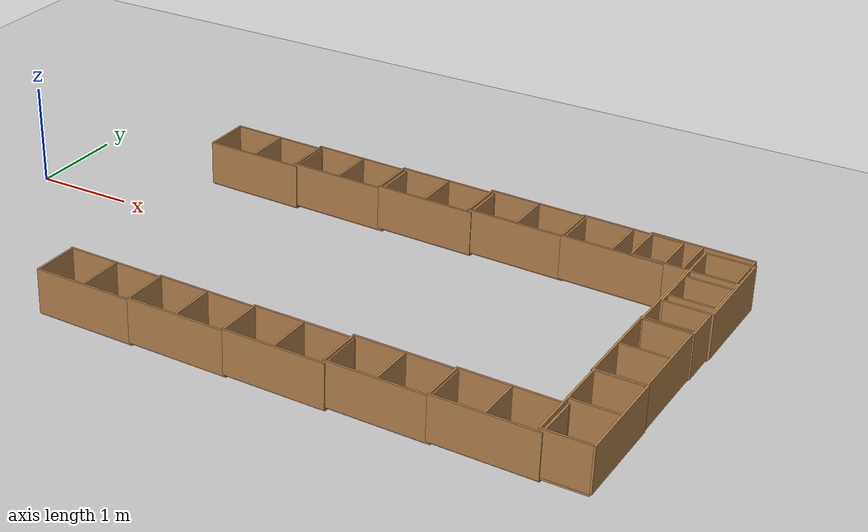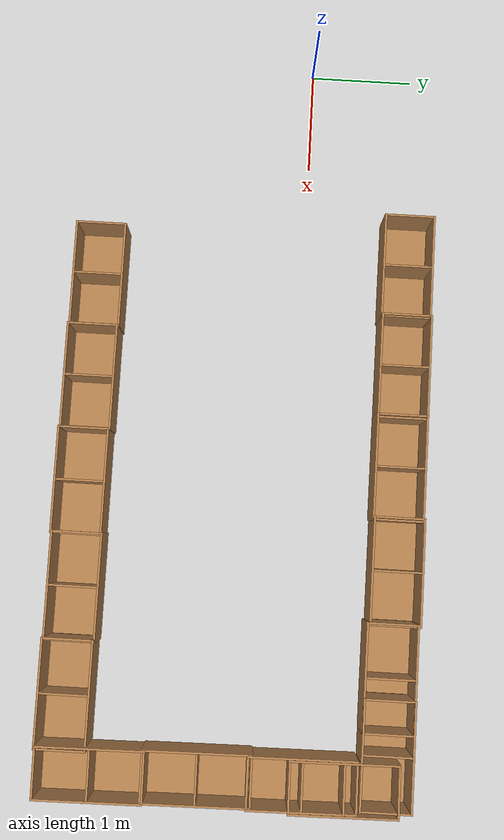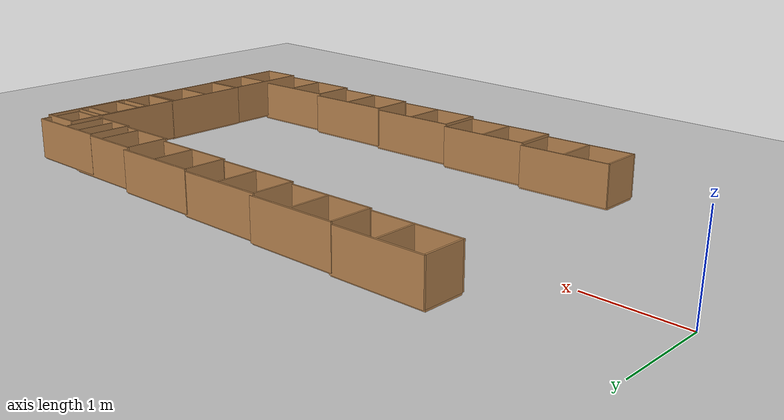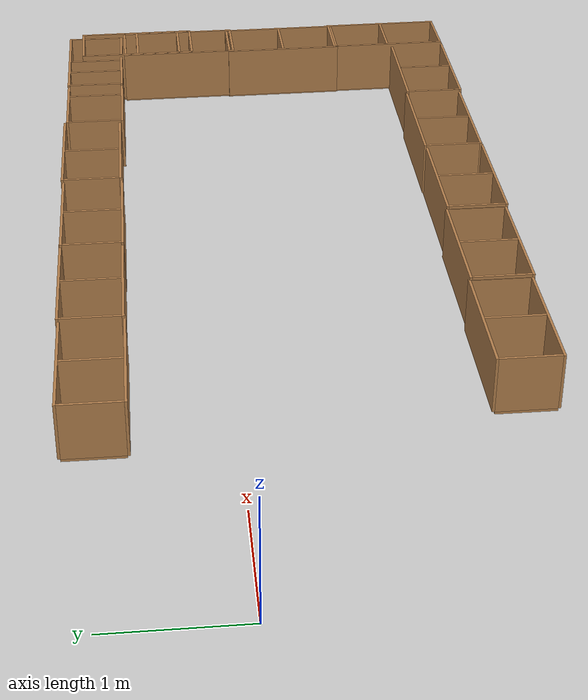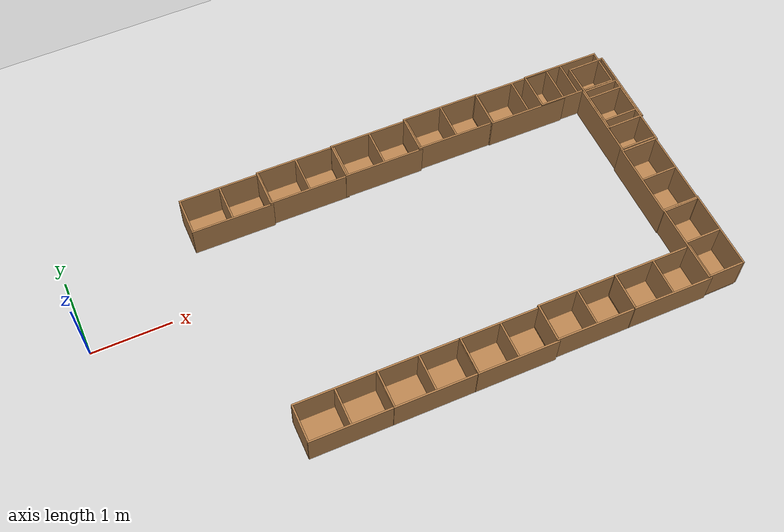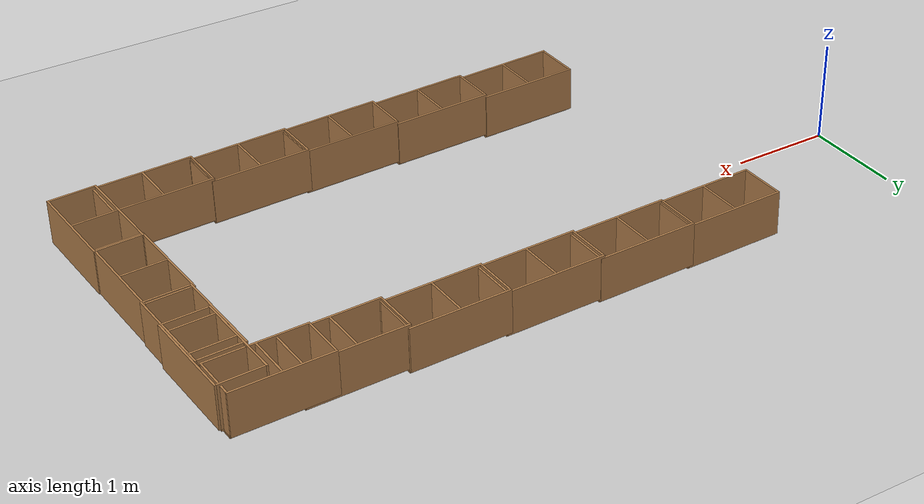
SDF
<sdf version="1.7">
 <world name="default">
  <model name="ground_plane">
   <static>1</static>
   <link name="link">
    <collision name="collision">
     <geometry><plane><normal>0 0 1</normal><size>100 100</size></plane></geometry>
     <surface><friction><ode><mu>100</mu><mu2>50</mu2></ode></friction></surface>
    </collision>
    <visual name="visual">
     <cast_shadows>0</cast_shadows>
     <geometry><plane><normal>0 0 1</normal><size>100 100</size></plane></geometry>
     <material>
      <script><uri>file://media/materials/scripts/gazebo.material</uri><name>Gazebo/Grey</name></script>
     </material>
    </visual>
   </link>
  </model>
  <model name="cabinet_2_clone_0">
   <static>1</static>
   <link name="cabinet_bottom_plate">
    <inertial>
     <pose>0 0 -1 0 -0 0</pose>
     <inertia><ixx>2.05</ixx><ixy>0</ixy><ixz>0</ixz><iyy>2.05</iyy><iyz>0</iyz><izz>2.05</izz></inertia>
     <mass>25</mass>
    </inertial>
    <collision name="cabinet_bottom_plate_geom">
     <pose>0 0 0.01 0 -0 0</pose>
     <geometry><box><size>0.45 0.45 0.02</size></box></geometry>
    </collision>
    <visual name="cabinet_bottom_plate_geom_visual">
     <pose>0 0 0.01 0 -0 0</pose>
     <geometry><box><size>0.45 0.45 0.02</size></box></geometry>
     <material>
      <script><uri>file://media/materials/scripts/gazebo.material</uri><name>Gazebo/Wood</name></script>
     </material>
    </visual>
    <collision name="cabinet_bottom_plate_geom_cabinet_back_plate">
     <pose>0.235 0 0.51 0 -0 0</pose>
     <geometry><box><size>0.02 0.45 1.02</size></box></geometry>
    </collision>
    <visual name="cabinet_bottom_plate_geom_cabinet_back_plate_visual">
     <pose>0.235 0 0.51 0 -0 0</pose>
     <geometry><box><size>0.02 0.45 1.02</size></box></geometry>
     <material>
      <script><uri>file://media/materials/scripts/gazebo.material</uri><name>Gazebo/Wood</name></script>
     </material>
    </visual>
    <collision name="cabinet_bottom_plate_geom_cabinet_left_plate">
     <pose>0 0.235 0.51 0 -0 0</pose>
     <geometry><box><size>0.45 0.02 1.02</size></box></geometry>
    </collision>
    <visual name="cabinet_bottom_plate_geom_cabinet_left_plate_visual">
     <pose>0 0.235 0.51 0 -0 0</pose>
     <geometry><box><size>0.45 0.02 1.02</size></box></geometry>
     <material>
      <script><uri>file://media/materials/scripts/gazebo.material</uri><name>Gazebo/Wood</name></script>
     </material>
    </visual>
    <collision name="cabinet_bottom_plate_geom_cabinet_middle_plate">
     <pose>0 0 0.51 0 -0 0</pose>
     <geometry><box><size>0.45 0.45 0.02</size></box></geometry>
    </collision>
    <visual name="cabinet_bottom_plate_geom_cabinet_middle_plate_visual">
     <pose>0 0 0.51 0 -0 0</pose>
     <geometry><box><size>0.45 0.45 0.02</size></box></geometry>
     <material>
      <script><uri>file://media/materials/scripts/gazebo.material</uri><name>Gazebo/Wood</name></script>
     </material>
    </visual>
    <collision name="cabinet_bottom_plate_geom_cabinet_right_plate">
     <pose>0 -0.235 0.51 0 -0 0</pose>
     <geometry><box><size>0.45 0.02 1.02</size></box></geometry>
    </collision>
    <visual name="cabinet_bottom_plate_geom_cabinet_right_plate_visual">
     <pose>0 -0.235 0.51 0 -0 0</pose>
     <geometry><box><size>0.45 0.02 1.02</size></box></geometry>
     <material>
      <script><uri>file://media/materials/scripts/gazebo.material</uri><name>Gazebo/Wood</name></script>
     </material>
    </visual>
    <collision name="cabinet_bottom_plate_geom_cabinet_top_plate">
     <pose>0 0 1.01 0 -0 0</pose>
     <geometry><box><size>0.45 0.45 0.02</size></box></geometry>
    </collision>
    <visual name="cabinet_bottom_plate_geom_cabinet_top_plate_visual">
     <pose>0 0 1.01 0 -0 0</pose>
     <geometry><box><size>0.45 0.45 0.02</size></box></geometry>
     <material>
      <script><uri>file://media/materials/scripts/gazebo.material</uri><name>Gazebo/Wood</name></script>
     </material>
    </visual>
   </link>
   <pose>1.57078 0.995454 0.270844 3.14159 1.54735 3.14159</pose>
  </model>
  <model name="cabinet_2_clone_1">
   <static>1</static>
   <link name="cabinet_bottom_plate">
    <inertial>
     <pose>0 0 -1 0 -0 0</pose>
     <inertia><ixx>2.05</ixx><ixy>0</ixy><ixz>0</ixz><iyy>2.05</iyy><iyz>0</iyz><izz>2.05</izz></inertia>
     <mass>25</mass>
    </inertial>
    <collision name="cabinet_bottom_plate_geom">
     <pose>0 0 0.01 0 -0 0</pose>
     <geometry><box><size>0.45 0.45 0.02</size></box></geometry>
    </collision>
    <visual name="cabinet_bottom_plate_geom_visual">
     <pose>0 0 0.01 0 -0 0</pose>
     <geometry><box><size>0.45 0.45 0.02</size></box></geometry>
     <material>
      <script><uri>file://media/materials/scripts/gazebo.material</uri><name>Gazebo/Wood</name></script>
     </material>
    </visual>
    <collision name="cabinet_bottom_plate_geom_cabinet_back_plate">
     <pose>0.235 0 0.51 0 -0 0</pose>
     <geometry><box><size>0.02 0.45 1.02</size></box></geometry>
    </collision>
    <visual name="cabinet_bottom_plate_geom_cabinet_back_plate_visual">
     <pose>0.235 0 0.51 0 -0 0</pose>
     <geometry><box><size>0.02 0.45 1.02</size></box></geometry>
     <material>
      <script><uri>file://media/materials/scripts/gazebo.material</uri><name>Gazebo/Wood</name></script>
     </material>
    </visual>
    <collision name="cabinet_bottom_plate_geom_cabinet_left_plate">
     <pose>0 0.235 0.51 0 -0 0</pose>
     <geometry><box><size>0.45 0.02 1.02</size></box></geometry>
    </collision>
    <visual name="cabinet_bottom_plate_geom_cabinet_left_plate_visual">
     <pose>0 0.235 0.51 0 -0 0</pose>
     <geometry><box><size>0.45 0.02 1.02</size></box></geometry>
     <material>
      <script><uri>file://media/materials/scripts/gazebo.material</uri><name>Gazebo/Wood</name></script>
     </material>
    </visual>
    <collision name="cabinet_bottom_plate_geom_cabinet_middle_plate">
     <pose>0 0 0.51 0 -0 0</pose>
     <geometry><box><size>0.45 0.45 0.02</size></box></geometry>
    </collision>
    <visual name="cabinet_bottom_plate_geom_cabinet_middle_plate_visual">
     <pose>0 0 0.51 0 -0 0</pose>
     <geometry><box><size>0.45 0.45 0.02</size></box></geometry>
     <material>
      <script><uri>file://media/materials/scripts/gazebo.material</uri><name>Gazebo/Wood</name></script>
     </material>
    </visual>
    <collision name="cabinet_bottom_plate_geom_cabinet_right_plate">
     <pose>0 -0.235 0.51 0 -0 0</pose>
     <geometry><box><size>0.45 0.02 1.02</size></box></geometry>
    </collision>
    <visual name="cabinet_bottom_plate_geom_cabinet_right_plate_visual">
     <pose>0 -0.235 0.51 0 -0 0</pose>
     <geometry><box><size>0.45 0.02 1.02</size></box></geometry>
     <material>
      <script><uri>file://media/materials/scripts/gazebo.material</uri><name>Gazebo/Wood</name></script>
     </material>
    </visual>
    <collision name="cabinet_bottom_plate_geom_cabinet_top_plate">
     <pose>0 0 1.01 0 -0 0</pose>
     <geometry><box><size>0.45 0.45 0.02</size></box></geometry>
    </collision>
    <visual name="cabinet_bottom_plate_geom_cabinet_top_plate_visual">
     <pose>0 0 1.01 0 -0 0</pose>
     <geometry><box><size>0.45 0.45 0.02</size></box></geometry>
     <material>
      <script><uri>file://media/materials/scripts/gazebo.material</uri><name>Gazebo/Wood</name></script>
     </material>
    </visual>
   </link>
   <pose>2.55595 1.0037 0.270844 3.14159 1.54735 3.14159</pose>
  </model>
  <model name="cabinet_2_clone_2">
   <static>1</static>
   <link name="cabinet_bottom_plate">
    <inertial>
     <pose>0 0 -1 0 -0 0</pose>
     <inertia><ixx>2.05</ixx><ixy>0</ixy><ixz>0</ixz><iyy>2.05</iyy><iyz>0</iyz><izz>2.05</izz></inertia>
     <mass>25</mass>
    </inertial>
    <collision name="cabinet_bottom_plate_geom">
     <pose>0 0 0.01 0 -0 0</pose>
     <geometry><box><size>0.45 0.45 0.02</size></box></geometry>
    </collision>
    <visual name="cabinet_bottom_plate_geom_visual">
     <pose>0 0 0.01 0 -0 0</pose>
     <geometry><box><size>0.45 0.45 0.02</size></box></geometry>
     <material>
      <script><uri>file://media/materials/scripts/gazebo.material</uri><name>Gazebo/Wood</name></script>
     </material>
    </visual>
    <collision name="cabinet_bottom_plate_geom_cabinet_back_plate">
     <pose>0.235 0 0.51 0 -0 0</pose>
     <geometry><box><size>0.02 0.45 1.02</size></box></geometry>
    </collision>
    <visual name="cabinet_bottom_plate_geom_cabinet_back_plate_visual">
     <pose>0.235 0 0.51 0 -0 0</pose>
     <geometry><box><size>0.02 0.45 1.02</size></box></geometry>
     <material>
      <script><uri>file://media/materials/scripts/gazebo.material</uri><name>Gazebo/Wood</name></script>
     </material>
    </visual>
    <collision name="cabinet_bottom_plate_geom_cabinet_left_plate">
     <pose>0 0.235 0.51 0 -0 0</pose>
     <geometry><box><size>0.45 0.02 1.02</size></box></geometry>
    </collision>
    <visual name="cabinet_bottom_plate_geom_cabinet_left_plate_visual">
     <pose>0 0.235 0.51 0 -0 0</pose>
     <geometry><box><size>0.45 0.02 1.02</size></box></geometry>
     <material>
      <script><uri>file://media/materials/scripts/gazebo.material</uri><name>Gazebo/Wood</name></script>
     </material>
    </visual>
    <collision name="cabinet_bottom_plate_geom_cabinet_middle_plate">
     <pose>0 0 0.51 0 -0 0</pose>
     <geometry><box><size>0.45 0.45 0.02</size></box></geometry>
    </collision>
    <visual name="cabinet_bottom_plate_geom_cabinet_middle_plate_visual">
     <pose>0 0 0.51 0 -0 0</pose>
     <geometry><box><size>0.45 0.45 0.02</size></box></geometry>
     <material>
      <script><uri>file://media/materials/scripts/gazebo.material</uri><name>Gazebo/Wood</name></script>
     </material>
    </visual>
    <collision name="cabinet_bottom_plate_geom_cabinet_right_plate">
     <pose>0 -0.235 0.51 0 -0 0</pose>
     <geometry><box><size>0.45 0.02 1.02</size></box></geometry>
    </collision>
    <visual name="cabinet_bottom_plate_geom_cabinet_right_plate_visual">
     <pose>0 -0.235 0.51 0 -0 0</pose>
     <geometry><box><size>0.45 0.02 1.02</size></box></geometry>
     <material>
      <script><uri>file://media/materials/scripts/gazebo.material</uri><name>Gazebo/Wood</name></script>
     </material>
    </visual>
    <collision name="cabinet_bottom_plate_geom_cabinet_top_plate">
     <pose>0 0 1.01 0 -0 0</pose>
     <geometry><box><size>0.45 0.45 0.02</size></box></geometry>
    </collision>
    <visual name="cabinet_bottom_plate_geom_cabinet_top_plate_visual">
     <pose>0 0 1.01 0 -0 0</pose>
     <geometry><box><size>0.45 0.45 0.02</size></box></geometry>
     <material>
      <script><uri>file://media/materials/scripts/gazebo.material</uri><name>Gazebo/Wood</name></script>
     </material>
    </visual>
   </link>
   <pose>3.53035 0.999836 0.270844 3.14159 1.54735 3.14159</pose>
  </model>
  <model name="cabinet_2_clone_3">
   <static>1</static>
   <link name="cabinet_bottom_plate">
    <inertial>
     <pose>0 0 -1 0 -0 0</pose>
     <inertia><ixx>2.05</ixx><ixy>0</ixy><ixz>0</ixz><iyy>2.05</iyy><iyz>0</iyz><izz>2.05</izz></inertia>
     <mass>25</mass>
    </inertial>
    <collision name="cabinet_bottom_plate_geom">
     <pose>0 0 0.01 0 -0 0</pose>
     <geometry><box><size>0.45 0.45 0.02</size></box></geometry>
    </collision>
    <visual name="cabinet_bottom_plate_geom_visual">
     <pose>0 0 0.01 0 -0 0</pose>
     <geometry><box><size>0.45 0.45 0.02</size></box></geometry>
     <material>
      <script><uri>file://media/materials/scripts/gazebo.material</uri><name>Gazebo/Wood</name></script>
     </material>
    </visual>
    <collision name="cabinet_bottom_plate_geom_cabinet_back_plate">
     <pose>0.235 0 0.51 0 -0 0</pose>
     <geometry><box><size>0.02 0.45 1.02</size></box></geometry>
    </collision>
    <visual name="cabinet_bottom_plate_geom_cabinet_back_plate_visual">
     <pose>0.235 0 0.51 0 -0 0</pose>
     <geometry><box><size>0.02 0.45 1.02</size></box></geometry>
     <material>
      <script><uri>file://media/materials/scripts/gazebo.material</uri><name>Gazebo/Wood</name></script>
     </material>
    </visual>
    <collision name="cabinet_bottom_plate_geom_cabinet_left_plate">
     <pose>0 0.235 0.51 0 -0 0</pose>
     <geometry><box><size>0.45 0.02 1.02</size></box></geometry>
    </collision>
    <visual name="cabinet_bottom_plate_geom_cabinet_left_plate_visual">
     <pose>0 0.235 0.51 0 -0 0</pose>
     <geometry><box><size>0.45 0.02 1.02</size></box></geometry>
     <material>
      <script><uri>file://media/materials/scripts/gazebo.material</uri><name>Gazebo/Wood</name></script>
     </material>
    </visual>
    <collision name="cabinet_bottom_plate_geom_cabinet_middle_plate">
     <pose>0 0 0.51 0 -0 0</pose>
     <geometry><box><size>0.45 0.45 0.02</size></box></geometry>
    </collision>
    <visual name="cabinet_bottom_plate_geom_cabinet_middle_plate_visual">
     <pose>0 0 0.51 0 -0 0</pose>
     <geometry><box><size>0.45 0.45 0.02</size></box></geometry>
     <material>
      <script><uri>file://media/materials/scripts/gazebo.material</uri><name>Gazebo/Wood</name></script>
     </material>
    </visual>
    <collision name="cabinet_bottom_plate_geom_cabinet_right_plate">
     <pose>0 -0.235 0.51 0 -0 0</pose>
     <geometry><box><size>0.45 0.02 1.02</size></box></geometry>
    </collision>
    <visual name="cabinet_bottom_plate_geom_cabinet_right_plate_visual">
     <pose>0 -0.235 0.51 0 -0 0</pose>
     <geometry><box><size>0.45 0.02 1.02</size></box></geometry>
     <material>
      <script><uri>file://media/materials/scripts/gazebo.material</uri><name>Gazebo/Wood</name></script>
     </material>
    </visual>
    <collision name="cabinet_bottom_plate_geom_cabinet_top_plate">
     <pose>0 0 1.01 0 -0 0</pose>
     <geometry><box><size>0.45 0.45 0.02</size></box></geometry>
    </collision>
    <visual name="cabinet_bottom_plate_geom_cabinet_top_plate_visual">
     <pose>0 0 1.01 0 -0 0</pose>
     <geometry><box><size>0.45 0.45 0.02</size></box></geometry>
     <material>
      <script><uri>file://media/materials/scripts/gazebo.material</uri><name>Gazebo/Wood</name></script>
     </material>
    </visual>
   </link>
   <pose>4.50721 1.00858 0.270844 3.14159 1.54735 3.14159</pose>
  </model>
  <model name="cabinet_2_clone_6">
   <static>1</static>
   <link name="cabinet_bottom_plate">
    <inertial>
     <pose>0 0 -1 0 -0 0</pose>
     <inertia><ixx>2.05</ixx><ixy>0</ixy><ixz>0</ixz><iyy>2.05</iyy><iyz>0</iyz><izz>2.05</izz></inertia>
     <mass>25</mass>
    </inertial>
    <collision name="cabinet_bottom_plate_geom">
     <pose>0 0 0.01 0 -0 0</pose>
     <geometry><box><size>0.45 0.45 0.02</size></box></geometry>
    </collision>
    <visual name="cabinet_bottom_plate_geom_visual">
     <pose>0 0 0.01 0 -0 0</pose>
     <geometry><box><size>0.45 0.45 0.02</size></box></geometry>
     <material>
      <script><uri>file://media/materials/scripts/gazebo.material</uri><name>Gazebo/Wood</name></script>
     </material>
    </visual>
    <collision name="cabinet_bottom_plate_geom_cabinet_back_plate">
     <pose>0.235 0 0.51 0 -0 0</pose>
     <geometry><box><size>0.02 0.45 1.02</size></box></geometry>
    </collision>
    <visual name="cabinet_bottom_plate_geom_cabinet_back_plate_visual">
     <pose>0.235 0 0.51 0 -0 0</pose>
     <geometry><box><size>0.02 0.45 1.02</size></box></geometry>
     <material>
      <script><uri>file://media/materials/scripts/gazebo.material</uri><name>Gazebo/Wood</name></script>
     </material>
    </visual>
    <collision name="cabinet_bottom_plate_geom_cabinet_left_plate">
     <pose>0 0.235 0.51 0 -0 0</pose>
     <geometry><box><size>0.45 0.02 1.02</size></box></geometry>
    </collision>
    <visual name="cabinet_bottom_plate_geom_cabinet_left_plate_visual">
     <pose>0 0.235 0.51 0 -0 0</pose>
     <geometry><box><size>0.45 0.02 1.02</size></box></geometry>
     <material>
      <script><uri>file://media/materials/scripts/gazebo.material</uri><name>Gazebo/Wood</name></script>
     </material>
    </visual>
    <collision name="cabinet_bottom_plate_geom_cabinet_middle_plate">
     <pose>0 0 0.51 0 -0 0</pose>
     <geometry><box><size>0.45 0.45 0.02</size></box></geometry>
    </collision>
    <visual name="cabinet_bottom_plate_geom_cabinet_middle_plate_visual">
     <pose>0 0 0.51 0 -0 0</pose>
     <geometry><box><size>0.45 0.45 0.02</size></box></geometry>
     <material>
      <script><uri>file://media/materials/scripts/gazebo.material</uri><name>Gazebo/Wood</name></script>
     </material>
    </visual>
    <collision name="cabinet_bottom_plate_geom_cabinet_right_plate">
     <pose>0 -0.235 0.51 0 -0 0</pose>
     <geometry><box><size>0.45 0.02 1.02</size></box></geometry>
    </collision>
    <visual name="cabinet_bottom_plate_geom_cabinet_right_plate_visual">
     <pose>0 -0.235 0.51 0 -0 0</pose>
     <geometry><box><size>0.45 0.02 1.02</size></box></geometry>
     <material>
      <script><uri>file://media/materials/scripts/gazebo.material</uri><name>Gazebo/Wood</name></script>
     </material>
    </visual>
    <collision name="cabinet_bottom_plate_geom_cabinet_top_plate">
     <pose>0 0 1.01 0 -0 0</pose>
     <geometry><box><size>0.45 0.45 0.02</size></box></geometry>
    </collision>
    <visual name="cabinet_bottom_plate_geom_cabinet_top_plate_visual">
     <pose>0 0 1.01 0 -0 0</pose>
     <geometry><box><size>0.45 0.45 0.02</size></box></geometry>
     <material>
      <script><uri>file://media/materials/scripts/gazebo.material</uri><name>Gazebo/Wood</name></script>
     </material>
    </visual>
   </link>
   <pose>1.8139 -2.0031 0.270844 3.14159 1.54735 3.14159</pose>
  </model>
  <model name="cabinet_2_clone_9">
   <static>1</static>
   <link name="cabinet_bottom_plate">
    <inertial>
     <pose>0 0 -1 0 -0 0</pose>
     <inertia><ixx>2.05</ixx><ixy>0</ixy><ixz>0</ixz><iyy>2.05</iyy><iyz>0</iyz><izz>2.05</izz></inertia>
     <mass>25</mass>
    </inertial>
    <collision name="cabinet_bottom_plate_geom">
     <pose>0 0 0.01 0 -0 0</pose>
     <geometry><box><size>0.45 0.45 0.02</size></box></geometry>
    </collision>
    <visual name="cabinet_bottom_plate_geom_visual">
     <pose>0 0 0.01 0 -0 0</pose>
     <geometry><box><size>0.45 0.45 0.02</size></box></geometry>
     <material>
      <script><uri>file://media/materials/scripts/gazebo.material</uri><name>Gazebo/Wood</name></script>
     </material>
    </visual>
    <collision name="cabinet_bottom_plate_geom_cabinet_back_plate">
     <pose>0.235 0 0.51 0 -0 0</pose>
     <geometry><box><size>0.02 0.45 1.02</size></box></geometry>
    </collision>
    <visual name="cabinet_bottom_plate_geom_cabinet_back_plate_visual">
     <pose>0.235 0 0.51 0 -0 0</pose>
     <geometry><box><size>0.02 0.45 1.02</size></box></geometry>
     <material>
      <script><uri>file://media/materials/scripts/gazebo.material</uri><name>Gazebo/Wood</name></script>
     </material>
    </visual>
    <collision name="cabinet_bottom_plate_geom_cabinet_left_plate">
     <pose>0 0.235 0.51 0 -0 0</pose>
     <geometry><box><size>0.45 0.02 1.02</size></box></geometry>
    </collision>
    <visual name="cabinet_bottom_plate_geom_cabinet_left_plate_visual">
     <pose>0 0.235 0.51 0 -0 0</pose>
     <geometry><box><size>0.45 0.02 1.02</size></box></geometry>
     <material>
      <script><uri>file://media/materials/scripts/gazebo.material</uri><name>Gazebo/Wood</name></script>
     </material>
    </visual>
    <collision name="cabinet_bottom_plate_geom_cabinet_middle_plate">
     <pose>0 0 0.51 0 -0 0</pose>
     <geometry><box><size>0.45 0.45 0.02</size></box></geometry>
    </collision>
    <visual name="cabinet_bottom_plate_geom_cabinet_middle_plate_visual">
     <pose>0 0 0.51 0 -0 0</pose>
     <geometry><box><size>0.45 0.45 0.02</size></box></geometry>
     <material>
      <script><uri>file://media/materials/scripts/gazebo.material</uri><name>Gazebo/Wood</name></script>
     </material>
    </visual>
    <collision name="cabinet_bottom_plate_geom_cabinet_right_plate">
     <pose>0 -0.235 0.51 0 -0 0</pose>
     <geometry><box><size>0.45 0.02 1.02</size></box></geometry>
    </collision>
    <visual name="cabinet_bottom_plate_geom_cabinet_right_plate_visual">
     <pose>0 -0.235 0.51 0 -0 0</pose>
     <geometry><box><size>0.45 0.02 1.02</size></box></geometry>
     <material>
      <script><uri>file://media/materials/scripts/gazebo.material</uri><name>Gazebo/Wood</name></script>
     </material>
    </visual>
    <collision name="cabinet_bottom_plate_geom_cabinet_top_plate">
     <pose>0 0 1.01 0 -0 0</pose>
     <geometry><box><size>0.45 0.45 0.02</size></box></geometry>
    </collision>
    <visual name="cabinet_bottom_plate_geom_cabinet_top_plate_visual">
     <pose>0 0 1.01 0 -0 0</pose>
     <geometry><box><size>0.45 0.45 0.02</size></box></geometry>
     <material>
      <script><uri>file://media/materials/scripts/gazebo.material</uri><name>Gazebo/Wood</name></script>
     </material>
    </visual>
   </link>
   <pose>2.81975 -2.01255 0.270844 3.14159 1.54735 3.14159</pose>
  </model>
  <model name="cabinet_2_clone_10">
   <static>1</static>
   <link name="cabinet_bottom_plate">
    <inertial>
     <pose>0 0 -1 0 -0 0</pose>
     <inertia><ixx>2.05</ixx><ixy>0</ixy><ixz>0</ixz><iyy>2.05</iyy><iyz>0</iyz><izz>2.05</izz></inertia>
     <mass>25</mass>
    </inertial>
    <collision name="cabinet_bottom_plate_geom">
     <pose>0 0 0.01 0 -0 0</pose>
     <geometry><box><size>0.45 0.45 0.02</size></box></geometry>
    </collision>
    <visual name="cabinet_bottom_plate_geom_visual">
     <pose>0 0 0.01 0 -0 0</pose>
     <geometry><box><size>0.45 0.45 0.02</size></box></geometry>
     <material>
      <script><uri>file://media/materials/scripts/gazebo.material</uri><name>Gazebo/Wood</name></script>
     </material>
    </visual>
    <collision name="cabinet_bottom_plate_geom_cabinet_back_plate">
     <pose>0.235 0 0.51 0 -0 0</pose>
     <geometry><box><size>0.02 0.45 1.02</size></box></geometry>
    </collision>
    <visual name="cabinet_bottom_plate_geom_cabinet_back_plate_visual">
     <pose>0.235 0 0.51 0 -0 0</pose>
     <geometry><box><size>0.02 0.45 1.02</size></box></geometry>
     <material>
      <script><uri>file://media/materials/scripts/gazebo.material</uri><name>Gazebo/Wood</name></script>
     </material>
    </visual>
    <collision name="cabinet_bottom_plate_geom_cabinet_left_plate">
     <pose>0 0.235 0.51 0 -0 0</pose>
     <geometry><box><size>0.45 0.02 1.02</size></box></geometry>
    </collision>
    <visual name="cabinet_bottom_plate_geom_cabinet_left_plate_visual">
     <pose>0 0.235 0.51 0 -0 0</pose>
     <geometry><box><size>0.45 0.02 1.02</size></box></geometry>
     <material>
      <script><uri>file://media/materials/scripts/gazebo.material</uri><name>Gazebo/Wood</name></script>
     </material>
    </visual>
    <collision name="cabinet_bottom_plate_geom_cabinet_middle_plate">
     <pose>0 0 0.51 0 -0 0</pose>
     <geometry><box><size>0.45 0.45 0.02</size></box></geometry>
    </collision>
    <visual name="cabinet_bottom_plate_geom_cabinet_middle_plate_visual">
     <pose>0 0 0.51 0 -0 0</pose>
     <geometry><box><size>0.45 0.45 0.02</size></box></geometry>
     <material>
      <script><uri>file://media/materials/scripts/gazebo.material</uri><name>Gazebo/Wood</name></script>
     </material>
    </visual>
    <collision name="cabinet_bottom_plate_geom_cabinet_right_plate">
     <pose>0 -0.235 0.51 0 -0 0</pose>
     <geometry><box><size>0.45 0.02 1.02</size></box></geometry>
    </collision>
    <visual name="cabinet_bottom_plate_geom_cabinet_right_plate_visual">
     <pose>0 -0.235 0.51 0 -0 0</pose>
     <geometry><box><size>0.45 0.02 1.02</size></box></geometry>
     <material>
      <script><uri>file://media/materials/scripts/gazebo.material</uri><name>Gazebo/Wood</name></script>
     </material>
    </visual>
    <collision name="cabinet_bottom_plate_geom_cabinet_top_plate">
     <pose>0 0 1.01 0 -0 0</pose>
     <geometry><box><size>0.45 0.45 0.02</size></box></geometry>
    </collision>
    <visual name="cabinet_bottom_plate_geom_cabinet_top_plate_visual">
     <pose>0 0 1.01 0 -0 0</pose>
     <geometry><box><size>0.45 0.45 0.02</size></box></geometry>
     <material>
      <script><uri>file://media/materials/scripts/gazebo.material</uri><name>Gazebo/Wood</name></script>
     </material>
    </visual>
   </link>
   <pose>3.82694 -2.02202 0.270844 3.14159 1.54735 3.14159</pose>
  </model>
  <model name="cabinet_2_clone_11">
   <static>1</static>
   <link name="cabinet_bottom_plate">
    <inertial>
     <pose>0 0 -1 0 -0 0</pose>
     <inertia><ixx>2.05</ixx><ixy>0</ixy><ixz>0</ixz><iyy>2.05</iyy><iyz>0</iyz><izz>2.05</izz></inertia>
     <mass>25</mass>
    </inertial>
    <collision name="cabinet_bottom_plate_geom">
     <pose>0 0 0.01 0 -0 0</pose>
     <geometry><box><size>0.45 0.45 0.02</size></box></geometry>
    </collision>
    <visual name="cabinet_bottom_plate_geom_visual">
     <pose>0 0 0.01 0 -0 0</pose>
     <geometry><box><size>0.45 0.45 0.02</size></box></geometry>
     <material>
      <script><uri>file://media/materials/scripts/gazebo.material</uri><name>Gazebo/Wood</name></script>
     </material>
    </visual>
    <collision name="cabinet_bottom_plate_geom_cabinet_back_plate">
     <pose>0.235 0 0.51 0 -0 0</pose>
     <geometry><box><size>0.02 0.45 1.02</size></box></geometry>
    </collision>
    <visual name="cabinet_bottom_plate_geom_cabinet_back_plate_visual">
     <pose>0.235 0 0.51 0 -0 0</pose>
     <geometry><box><size>0.02 0.45 1.02</size></box></geometry>
     <material>
      <script><uri>file://media/materials/scripts/gazebo.material</uri><name>Gazebo/Wood</name></script>
     </material>
    </visual>
    <collision name="cabinet_bottom_plate_geom_cabinet_left_plate">
     <pose>0 0.235 0.51 0 -0 0</pose>
     <geometry><box><size>0.45 0.02 1.02</size></box></geometry>
    </collision>
    <visual name="cabinet_bottom_plate_geom_cabinet_left_plate_visual">
     <pose>0 0.235 0.51 0 -0 0</pose>
     <geometry><box><size>0.45 0.02 1.02</size></box></geometry>
     <material>
      <script><uri>file://media/materials/scripts/gazebo.material</uri><name>Gazebo/Wood</name></script>
     </material>
    </visual>
    <collision name="cabinet_bottom_plate_geom_cabinet_middle_plate">
     <pose>0 0 0.51 0 -0 0</pose>
     <geometry><box><size>0.45 0.45 0.02</size></box></geometry>
    </collision>
    <visual name="cabinet_bottom_plate_geom_cabinet_middle_plate_visual">
     <pose>0 0 0.51 0 -0 0</pose>
     <geometry><box><size>0.45 0.45 0.02</size></box></geometry>
     <material>
      <script><uri>file://media/materials/scripts/gazebo.material</uri><name>Gazebo/Wood</name></script>
     </material>
    </visual>
    <collision name="cabinet_bottom_plate_geom_cabinet_right_plate">
     <pose>0 -0.235 0.51 0 -0 0</pose>
     <geometry><box><size>0.45 0.02 1.02</size></box></geometry>
    </collision>
    <visual name="cabinet_bottom_plate_geom_cabinet_right_plate_visual">
     <pose>0 -0.235 0.51 0 -0 0</pose>
     <geometry><box><size>0.45 0.02 1.02</size></box></geometry>
     <material>
      <script><uri>file://media/materials/scripts/gazebo.material</uri><name>Gazebo/Wood</name></script>
     </material>
    </visual>
    <collision name="cabinet_bottom_plate_geom_cabinet_top_plate">
     <pose>0 0 1.01 0 -0 0</pose>
     <geometry><box><size>0.45 0.45 0.02</size></box></geometry>
    </collision>
    <visual name="cabinet_bottom_plate_geom_cabinet_top_plate_visual">
     <pose>0 0 1.01 0 -0 0</pose>
     <geometry><box><size>0.45 0.45 0.02</size></box></geometry>
     <material>
      <script><uri>file://media/materials/scripts/gazebo.material</uri><name>Gazebo/Wood</name></script>
     </material>
    </visual>
   </link>
   <pose>4.81544 -2.00827 0.270844 3.14159 1.54735 3.14159</pose>
  </model>
  <model name="cabinet_2_clone_12">
   <static>1</static>
   <link name="cabinet_bottom_plate">
    <inertial>
     <pose>0 0 -1 0 -0 0</pose>
     <inertia><ixx>2.05</ixx><ixy>0</ixy><ixz>0</ixz><iyy>2.05</iyy><iyz>0</iyz><izz>2.05</izz></inertia>
     <mass>25</mass>
    </inertial>
    <collision name="cabinet_bottom_plate_geom">
     <pose>0 0 0.01 0 -0 0</pose>
     <geometry><box><size>0.45 0.45 0.02</size></box></geometry>
    </collision>
    <visual name="cabinet_bottom_plate_geom_visual">
     <pose>0 0 0.01 0 -0 0</pose>
     <geometry><box><size>0.45 0.45 0.02</size></box></geometry>
     <material>
      <script><uri>file://media/materials/scripts/gazebo.material</uri><name>Gazebo/Wood</name></script>
     </material>
    </visual>
    <collision name="cabinet_bottom_plate_geom_cabinet_back_plate">
     <pose>0.235 0 0.51 0 -0 0</pose>
     <geometry><box><size>0.02 0.45 1.02</size></box></geometry>
    </collision>
    <visual name="cabinet_bottom_plate_geom_cabinet_back_plate_visual">
     <pose>0.235 0 0.51 0 -0 0</pose>
     <geometry><box><size>0.02 0.45 1.02</size></box></geometry>
     <material>
      <script><uri>file://media/materials/scripts/gazebo.material</uri><name>Gazebo/Wood</name></script>
     </material>
    </visual>
    <collision name="cabinet_bottom_plate_geom_cabinet_left_plate">
     <pose>0 0.235 0.51 0 -0 0</pose>
     <geometry><box><size>0.45 0.02 1.02</size></box></geometry>
    </collision>
    <visual name="cabinet_bottom_plate_geom_cabinet_left_plate_visual">
     <pose>0 0.235 0.51 0 -0 0</pose>
     <geometry><box><size>0.45 0.02 1.02</size></box></geometry>
     <material>
      <script><uri>file://media/materials/scripts/gazebo.material</uri><name>Gazebo/Wood</name></script>
     </material>
    </visual>
    <collision name="cabinet_bottom_plate_geom_cabinet_middle_plate">
     <pose>0 0 0.51 0 -0 0</pose>
     <geometry><box><size>0.45 0.45 0.02</size></box></geometry>
    </collision>
    <visual name="cabinet_bottom_plate_geom_cabinet_middle_plate_visual">
     <pose>0 0 0.51 0 -0 0</pose>
     <geometry><box><size>0.45 0.45 0.02</size></box></geometry>
     <material>
      <script><uri>file://media/materials/scripts/gazebo.material</uri><name>Gazebo/Wood</name></script>
     </material>
    </visual>
    <collision name="cabinet_bottom_plate_geom_cabinet_right_plate">
     <pose>0 -0.235 0.51 0 -0 0</pose>
     <geometry><box><size>0.45 0.02 1.02</size></box></geometry>
    </collision>
    <visual name="cabinet_bottom_plate_geom_cabinet_right_plate_visual">
     <pose>0 -0.235 0.51 0 -0 0</pose>
     <geometry><box><size>0.45 0.02 1.02</size></box></geometry>
     <material>
      <script><uri>file://media/materials/scripts/gazebo.material</uri><name>Gazebo/Wood</name></script>
     </material>
    </visual>
    <collision name="cabinet_bottom_plate_geom_cabinet_top_plate">
     <pose>0 0 1.01 0 -0 0</pose>
     <geometry><box><size>0.45 0.45 0.02</size></box></geometry>
    </collision>
    <visual name="cabinet_bottom_plate_geom_cabinet_top_plate_visual">
     <pose>0 0 1.01 0 -0 0</pose>
     <geometry><box><size>0.45 0.45 0.02</size></box></geometry>
     <material>
      <script><uri>file://media/materials/scripts/gazebo.material</uri><name>Gazebo/Wood</name></script>
     </material>
    </visual>
   </link>
   <pose>5.80349 -2.01684 0.270844 3.14159 1.54735 3.14159</pose>
  </model>
  <model name="cabinet_2_clone_15_clone_2_clone">
   <static>1</static>
   <link name="cabinet_bottom_plate">
    <inertial>
     <pose>0 0 -1 0 -0 0</pose>
     <inertia><ixx>2.05</ixx><ixy>0</ixy><ixz>0</ixz><iyy>2.05</iyy><iyz>0</iyz><izz>2.05</izz></inertia>
     <mass>25</mass>
    </inertial>
    <collision name="cabinet_bottom_plate_geom">
     <pose>0 0 0.01 0 -0 0</pose>
     <geometry><box><size>0.45 0.45 0.02</size></box></geometry>
    </collision>
    <visual name="cabinet_bottom_plate_geom_visual">
     <pose>0 0 0.01 0 -0 0</pose>
     <geometry><box><size>0.45 0.45 0.02</size></box></geometry>
     <material>
      <script><uri>file://media/materials/scripts/gazebo.material</uri><name>Gazebo/Wood</name></script>
     </material>
    </visual>
    <collision name="cabinet_bottom_plate_geom_cabinet_back_plate">
     <pose>0.235 0 0.51 0 -0 0</pose>
     <geometry><box><size>0.02 0.45 1.02</size></box></geometry>
    </collision>
    <visual name="cabinet_bottom_plate_geom_cabinet_back_plate_visual">
     <pose>0.235 0 0.51 0 -0 0</pose>
     <geometry><box><size>0.02 0.45 1.02</size></box></geometry>
     <material>
      <script><uri>file://media/materials/scripts/gazebo.material</uri><name>Gazebo/Wood</name></script>
     </material>
    </visual>
    <collision name="cabinet_bottom_plate_geom_cabinet_left_plate">
     <pose>0 0.235 0.51 0 -0 0</pose>
     <geometry><box><size>0.45 0.02 1.02</size></box></geometry>
    </collision>
    <visual name="cabinet_bottom_plate_geom_cabinet_left_plate_visual">
     <pose>0 0.235 0.51 0 -0 0</pose>
     <geometry><box><size>0.45 0.02 1.02</size></box></geometry>
     <material>
      <script><uri>file://media/materials/scripts/gazebo.material</uri><name>Gazebo/Wood</name></script>
     </material>
    </visual>
    <collision name="cabinet_bottom_plate_geom_cabinet_middle_plate">
     <pose>0 0 0.51 0 -0 0</pose>
     <geometry><box><size>0.45 0.45 0.02</size></box></geometry>
    </collision>
    <visual name="cabinet_bottom_plate_geom_cabinet_middle_plate_visual">
     <pose>0 0 0.51 0 -0 0</pose>
     <geometry><box><size>0.45 0.45 0.02</size></box></geometry>
     <material>
      <script><uri>file://media/materials/scripts/gazebo.material</uri><name>Gazebo/Wood</name></script>
     </material>
    </visual>
    <collision name="cabinet_bottom_plate_geom_cabinet_right_plate">
     <pose>0 -0.235 0.51 0 -0 0</pose>
     <geometry><box><size>0.45 0.02 1.02</size></box></geometry>
    </collision>
    <visual name="cabinet_bottom_plate_geom_cabinet_right_plate_visual">
     <pose>0 -0.235 0.51 0 -0 0</pose>
     <geometry><box><size>0.45 0.02 1.02</size></box></geometry>
     <material>
      <script><uri>file://media/materials/scripts/gazebo.material</uri><name>Gazebo/Wood</name></script>
     </material>
    </visual>
    <collision name="cabinet_bottom_plate_geom_cabinet_top_plate">
     <pose>0 0 1.01 0 -0 0</pose>
     <geometry><box><size>0.45 0.45 0.02</size></box></geometry>
    </collision>
    <visual name="cabinet_bottom_plate_geom_cabinet_top_plate_visual">
     <pose>0 0 1.01 0 -0 0</pose>
     <geometry><box><size>0.45 0.45 0.02</size></box></geometry>
     <material>
      <script><uri>file://media/materials/scripts/gazebo.material</uri><name>Gazebo/Wood</name></script>
     </material>
    </visual>
   </link>
   <pose>7.02238 -2.24513 0.270633 1.55828 1.54735 3.14159</pose>
  </model>
  <model name="cabinet_2_clone_15_clone_2_clone_0">
   <static>1</static>
   <link name="cabinet_bottom_plate">
    <inertial>
     <pose>0 0 -1 0 -0 0</pose>
     <inertia><ixx>2.05</ixx><ixy>0</ixy><ixz>0</ixz><iyy>2.05</iyy><iyz>0</iyz><izz>2.05</izz></inertia>
     <mass>25</mass>
    </inertial>
    <collision name="cabinet_bottom_plate_geom">
     <pose>0 0 0.01 0 -0 0</pose>
     <geometry><box><size>0.45 0.45 0.02</size></box></geometry>
    </collision>
    <visual name="cabinet_bottom_plate_geom_visual">
     <pose>0 0 0.01 0 -0 0</pose>
     <geometry><box><size>0.45 0.45 0.02</size></box></geometry>
     <material>
      <script><uri>file://media/materials/scripts/gazebo.material</uri><name>Gazebo/Wood</name></script>
     </material>
    </visual>
    <collision name="cabinet_bottom_plate_geom_cabinet_back_plate">
     <pose>0.235 0 0.51 0 -0 0</pose>
     <geometry><box><size>0.02 0.45 1.02</size></box></geometry>
    </collision>
    <visual name="cabinet_bottom_plate_geom_cabinet_back_plate_visual">
     <pose>0.235 0 0.51 0 -0 0</pose>
     <geometry><box><size>0.02 0.45 1.02</size></box></geometry>
     <material>
      <script><uri>file://media/materials/scripts/gazebo.material</uri><name>Gazebo/Wood</name></script>
     </material>
    </visual>
    <collision name="cabinet_bottom_plate_geom_cabinet_left_plate">
     <pose>0 0.235 0.51 0 -0 0</pose>
     <geometry><box><size>0.45 0.02 1.02</size></box></geometry>
    </collision>
    <visual name="cabinet_bottom_plate_geom_cabinet_left_plate_visual">
     <pose>0 0.235 0.51 0 -0 0</pose>
     <geometry><box><size>0.45 0.02 1.02</size></box></geometry>
     <material>
      <script><uri>file://media/materials/scripts/gazebo.material</uri><name>Gazebo/Wood</name></script>
     </material>
    </visual>
    <collision name="cabinet_bottom_plate_geom_cabinet_middle_plate">
     <pose>0 0 0.51 0 -0 0</pose>
     <geometry><box><size>0.45 0.45 0.02</size></box></geometry>
    </collision>
    <visual name="cabinet_bottom_plate_geom_cabinet_middle_plate_visual">
     <pose>0 0 0.51 0 -0 0</pose>
     <geometry><box><size>0.45 0.45 0.02</size></box></geometry>
     <material>
      <script><uri>file://media/materials/scripts/gazebo.material</uri><name>Gazebo/Wood</name></script>
     </material>
    </visual>
    <collision name="cabinet_bottom_plate_geom_cabinet_right_plate">
     <pose>0 -0.235 0.51 0 -0 0</pose>
     <geometry><box><size>0.45 0.02 1.02</size></box></geometry>
    </collision>
    <visual name="cabinet_bottom_plate_geom_cabinet_right_plate_visual">
     <pose>0 -0.235 0.51 0 -0 0</pose>
     <geometry><box><size>0.45 0.02 1.02</size></box></geometry>
     <material>
      <script><uri>file://media/materials/scripts/gazebo.material</uri><name>Gazebo/Wood</name></script>
     </material>
    </visual>
    <collision name="cabinet_bottom_plate_geom_cabinet_top_plate">
     <pose>0 0 1.01 0 -0 0</pose>
     <geometry><box><size>0.45 0.45 0.02</size></box></geometry>
    </collision>
    <visual name="cabinet_bottom_plate_geom_cabinet_top_plate_visual">
     <pose>0 0 1.01 0 -0 0</pose>
     <geometry><box><size>0.45 0.45 0.02</size></box></geometry>
     <material>
      <script><uri>file://media/materials/scripts/gazebo.material</uri><name>Gazebo/Wood</name></script>
     </material>
    </visual>
   </link>
   <pose>7.00063 -1.26274 0.270633 1.55828 1.54735 3.14159</pose>
  </model>
  <model name="cabinet_2_clone_15_clone_2_clone_1">
   <static>1</static>
   <link name="cabinet_bottom_plate">
    <inertial>
     <pose>0 0 -1 0 -0 0</pose>
     <inertia><ixx>2.05</ixx><ixy>0</ixy><ixz>0</ixz><iyy>2.05</iyy><iyz>0</iyz><izz>2.05</izz></inertia>
     <mass>25</mass>
    </inertial>
    <collision name="cabinet_bottom_plate_geom">
     <pose>0 0 0.01 0 -0 0</pose>
     <geometry><box><size>0.45 0.45 0.02</size></box></geometry>
    </collision>
    <visual name="cabinet_bottom_plate_geom_visual">
     <pose>0 0 0.01 0 -0 0</pose>
     <geometry><box><size>0.45 0.45 0.02</size></box></geometry>
     <material>
      <script><uri>file://media/materials/scripts/gazebo.material</uri><name>Gazebo/Wood</name></script>
     </material>
    </visual>
    <collision name="cabinet_bottom_plate_geom_cabinet_back_plate">
     <pose>0.235 0 0.51 0 -0 0</pose>
     <geometry><box><size>0.02 0.45 1.02</size></box></geometry>
    </collision>
    <visual name="cabinet_bottom_plate_geom_cabinet_back_plate_visual">
     <pose>0.235 0 0.51 0 -0 0</pose>
     <geometry><box><size>0.02 0.45 1.02</size></box></geometry>
     <material>
      <script><uri>file://media/materials/scripts/gazebo.material</uri><name>Gazebo/Wood</name></script>
     </material>
    </visual>
    <collision name="cabinet_bottom_plate_geom_cabinet_left_plate">
     <pose>0 0.235 0.51 0 -0 0</pose>
     <geometry><box><size>0.45 0.02 1.02</size></box></geometry>
    </collision>
    <visual name="cabinet_bottom_plate_geom_cabinet_left_plate_visual">
     <pose>0 0.235 0.51 0 -0 0</pose>
     <geometry><box><size>0.45 0.02 1.02</size></box></geometry>
     <material>
      <script><uri>file://media/materials/scripts/gazebo.material</uri><name>Gazebo/Wood</name></script>
     </material>
    </visual>
    <collision name="cabinet_bottom_plate_geom_cabinet_middle_plate">
     <pose>0 0 0.51 0 -0 0</pose>
     <geometry><box><size>0.45 0.45 0.02</size></box></geometry>
    </collision>
    <visual name="cabinet_bottom_plate_geom_cabinet_middle_plate_visual">
     <pose>0 0 0.51 0 -0 0</pose>
     <geometry><box><size>0.45 0.45 0.02</size></box></geometry>
     <material>
      <script><uri>file://media/materials/scripts/gazebo.material</uri><name>Gazebo/Wood</name></script>
     </material>
    </visual>
    <collision name="cabinet_bottom_plate_geom_cabinet_right_plate">
     <pose>0 -0.235 0.51 0 -0 0</pose>
     <geometry><box><size>0.45 0.02 1.02</size></box></geometry>
    </collision>
    <visual name="cabinet_bottom_plate_geom_cabinet_right_plate_visual">
     <pose>0 -0.235 0.51 0 -0 0</pose>
     <geometry><box><size>0.45 0.02 1.02</size></box></geometry>
     <material>
      <script><uri>file://media/materials/scripts/gazebo.material</uri><name>Gazebo/Wood</name></script>
     </material>
    </visual>
    <collision name="cabinet_bottom_plate_geom_cabinet_top_plate">
     <pose>0 0 1.01 0 -0 0</pose>
     <geometry><box><size>0.45 0.45 0.02</size></box></geometry>
    </collision>
    <visual name="cabinet_bottom_plate_geom_cabinet_top_plate_visual">
     <pose>0 0 1.01 0 -0 0</pose>
     <geometry><box><size>0.45 0.45 0.02</size></box></geometry>
     <material>
      <script><uri>file://media/materials/scripts/gazebo.material</uri><name>Gazebo/Wood</name></script>
     </material>
    </visual>
   </link>
   <pose>7.00104 -0.296124 0.270633 1.55828 1.54735 3.14159</pose>
  </model>
  <model name="cabinet_2_clone_15_clone_2_clone_2">
   <static>1</static>
   <link name="cabinet_bottom_plate">
    <inertial>
     <pose>0 0 -1 0 -0 0</pose>
     <inertia><ixx>2.05</ixx><ixy>0</ixy><ixz>0</ixz><iyy>2.05</iyy><iyz>0</iyz><izz>2.05</izz></inertia>
     <mass>25</mass>
    </inertial>
    <collision name="cabinet_bottom_plate_geom">
     <pose>0 0 0.01 0 -0 0</pose>
     <geometry><box><size>0.45 0.45 0.02</size></box></geometry>
    </collision>
    <visual name="cabinet_bottom_plate_geom_visual">
     <pose>0 0 0.01 0 -0 0</pose>
     <geometry><box><size>0.45 0.45 0.02</size></box></geometry>
     <material>
      <script><uri>file://media/materials/scripts/gazebo.material</uri><name>Gazebo/Wood</name></script>
     </material>
    </visual>
    <collision name="cabinet_bottom_plate_geom_cabinet_back_plate">
     <pose>0.235 0 0.51 0 -0 0</pose>
     <geometry><box><size>0.02 0.45 1.02</size></box></geometry>
    </collision>
    <visual name="cabinet_bottom_plate_geom_cabinet_back_plate_visual">
     <pose>0.235 0 0.51 0 -0 0</pose>
     <geometry><box><size>0.02 0.45 1.02</size></box></geometry>
     <material>
      <script><uri>file://media/materials/scripts/gazebo.material</uri><name>Gazebo/Wood</name></script>
     </material>
    </visual>
    <collision name="cabinet_bottom_plate_geom_cabinet_left_plate">
     <pose>0 0.235 0.51 0 -0 0</pose>
     <geometry><box><size>0.45 0.02 1.02</size></box></geometry>
    </collision>
    <visual name="cabinet_bottom_plate_geom_cabinet_left_plate_visual">
     <pose>0 0.235 0.51 0 -0 0</pose>
     <geometry><box><size>0.45 0.02 1.02</size></box></geometry>
     <material>
      <script><uri>file://media/materials/scripts/gazebo.material</uri><name>Gazebo/Wood</name></script>
     </material>
    </visual>
    <collision name="cabinet_bottom_plate_geom_cabinet_middle_plate">
     <pose>0 0 0.51 0 -0 0</pose>
     <geometry><box><size>0.45 0.45 0.02</size></box></geometry>
    </collision>
    <visual name="cabinet_bottom_plate_geom_cabinet_middle_plate_visual">
     <pose>0 0 0.51 0 -0 0</pose>
     <geometry><box><size>0.45 0.45 0.02</size></box></geometry>
     <material>
      <script><uri>file://media/materials/scripts/gazebo.material</uri><name>Gazebo/Wood</name></script>
     </material>
    </visual>
    <collision name="cabinet_bottom_plate_geom_cabinet_right_plate">
     <pose>0 -0.235 0.51 0 -0 0</pose>
     <geometry><box><size>0.45 0.02 1.02</size></box></geometry>
    </collision>
    <visual name="cabinet_bottom_plate_geom_cabinet_right_plate_visual">
     <pose>0 -0.235 0.51 0 -0 0</pose>
     <geometry><box><size>0.45 0.02 1.02</size></box></geometry>
     <material>
      <script><uri>file://media/materials/scripts/gazebo.material</uri><name>Gazebo/Wood</name></script>
     </material>
    </visual>
    <collision name="cabinet_bottom_plate_geom_cabinet_top_plate">
     <pose>0 0 1.01 0 -0 0</pose>
     <geometry><box><size>0.45 0.45 0.02</size></box></geometry>
    </collision>
    <visual name="cabinet_bottom_plate_geom_cabinet_top_plate_visual">
     <pose>0 0 1.01 0 -0 0</pose>
     <geometry><box><size>0.45 0.45 0.02</size></box></geometry>
     <material>
      <script><uri>file://media/materials/scripts/gazebo.material</uri><name>Gazebo/Wood</name></script>
     </material>
    </visual>
   </link>
   <pose>7.01687 0.087856 0.270633 1.55828 1.54735 3.14159</pose>
  </model>
  <model name="cabinet_2_clone_3_clone">
   <static>1</static>
   <link name="cabinet_bottom_plate">
    <inertial>
     <pose>0 0 -1 0 -0 0</pose>
     <inertia><ixx>2.05</ixx><ixy>0</ixy><ixz>0</ixz><iyy>2.05</iyy><iyz>0</iyz><izz>2.05</izz></inertia>
     <mass>25</mass>
    </inertial>
    <collision name="cabinet_bottom_plate_geom">
     <pose>0 0 0.01 0 -0 0</pose>
     <geometry><box><size>0.45 0.45 0.02</size></box></geometry>
    </collision>
    <visual name="cabinet_bottom_plate_geom_visual">
     <pose>0 0 0.01 0 -0 0</pose>
     <geometry><box><size>0.45 0.45 0.02</size></box></geometry>
     <material>
      <script><uri>file://media/materials/scripts/gazebo.material</uri><name>Gazebo/Wood</name></script>
     </material>
    </visual>
    <collision name="cabinet_bottom_plate_geom_cabinet_back_plate">
     <pose>0.235 0 0.51 0 -0 0</pose>
     <geometry><box><size>0.02 0.45 1.02</size></box></geometry>
    </collision>
    <visual name="cabinet_bottom_plate_geom_cabinet_back_plate_visual">
     <pose>0.235 0 0.51 0 -0 0</pose>
     <geometry><box><size>0.02 0.45 1.02</size></box></geometry>
     <material>
      <script><uri>file://media/materials/scripts/gazebo.material</uri><name>Gazebo/Wood</name></script>
     </material>
    </visual>
    <collision name="cabinet_bottom_plate_geom_cabinet_left_plate">
     <pose>0 0.235 0.51 0 -0 0</pose>
     <geometry><box><size>0.45 0.02 1.02</size></box></geometry>
    </collision>
    <visual name="cabinet_bottom_plate_geom_cabinet_left_plate_visual">
     <pose>0 0.235 0.51 0 -0 0</pose>
     <geometry><box><size>0.45 0.02 1.02</size></box></geometry>
     <material>
      <script><uri>file://media/materials/scripts/gazebo.material</uri><name>Gazebo/Wood</name></script>
     </material>
    </visual>
    <collision name="cabinet_bottom_plate_geom_cabinet_middle_plate">
     <pose>0 0 0.51 0 -0 0</pose>
     <geometry><box><size>0.45 0.45 0.02</size></box></geometry>
    </collision>
    <visual name="cabinet_bottom_plate_geom_cabinet_middle_plate_visual">
     <pose>0 0 0.51 0 -0 0</pose>
     <geometry><box><size>0.45 0.45 0.02</size></box></geometry>
     <material>
      <script><uri>file://media/materials/scripts/gazebo.material</uri><name>Gazebo/Wood</name></script>
     </material>
    </visual>
    <collision name="cabinet_bottom_plate_geom_cabinet_right_plate">
     <pose>0 -0.235 0.51 0 -0 0</pose>
     <geometry><box><size>0.45 0.02 1.02</size></box></geometry>
    </collision>
    <visual name="cabinet_bottom_plate_geom_cabinet_right_plate_visual">
     <pose>0 -0.235 0.51 0 -0 0</pose>
     <geometry><box><size>0.45 0.02 1.02</size></box></geometry>
     <material>
      <script><uri>file://media/materials/scripts/gazebo.material</uri><name>Gazebo/Wood</name></script>
     </material>
    </visual>
    <collision name="cabinet_bottom_plate_geom_cabinet_top_plate">
     <pose>0 0 1.01 0 -0 0</pose>
     <geometry><box><size>0.45 0.45 0.02</size></box></geometry>
    </collision>
    <visual name="cabinet_bottom_plate_geom_cabinet_top_plate_visual">
     <pose>0 0 1.01 0 -0 0</pose>
     <geometry><box><size>0.45 0.45 0.02</size></box></geometry>
     <material>
      <script><uri>file://media/materials/scripts/gazebo.material</uri><name>Gazebo/Wood</name></script>
     </material>
    </visual>
   </link>
   <pose>5.49118 0.985131 0.270844 3.14159 1.54735 3.14159</pose>
  </model>
  <model name="cabinet_2_clone_3_clone_0">
   <static>1</static>
   <link name="cabinet_bottom_plate">
    <inertial>
     <pose>0 0 -1 0 -0 0</pose>
     <inertia><ixx>2.05</ixx><ixy>0</ixy><ixz>0</ixz><iyy>2.05</iyy><iyz>0</iyz><izz>2.05</izz></inertia>
     <mass>25</mass>
    </inertial>
    <collision name="cabinet_bottom_plate_geom">
     <pose>0 0 0.01 0 -0 0</pose>
     <geometry><box><size>0.45 0.45 0.02</size></box></geometry>
    </collision>
    <visual name="cabinet_bottom_plate_geom_visual">
     <pose>0 0 0.01 0 -0 0</pose>
     <geometry><box><size>0.45 0.45 0.02</size></box></geometry>
     <material>
      <script><uri>file://media/materials/scripts/gazebo.material</uri><name>Gazebo/Wood</name></script>
     </material>
    </visual>
    <collision name="cabinet_bottom_plate_geom_cabinet_back_plate">
     <pose>0.235 0 0.51 0 -0 0</pose>
     <geometry><box><size>0.02 0.45 1.02</size></box></geometry>
    </collision>
    <visual name="cabinet_bottom_plate_geom_cabinet_back_plate_visual">
     <pose>0.235 0 0.51 0 -0 0</pose>
     <geometry><box><size>0.02 0.45 1.02</size></box></geometry>
     <material>
      <script><uri>file://media/materials/scripts/gazebo.material</uri><name>Gazebo/Wood</name></script>
     </material>
    </visual>
    <collision name="cabinet_bottom_plate_geom_cabinet_left_plate">
     <pose>0 0.235 0.51 0 -0 0</pose>
     <geometry><box><size>0.45 0.02 1.02</size></box></geometry>
    </collision>
    <visual name="cabinet_bottom_plate_geom_cabinet_left_plate_visual">
     <pose>0 0.235 0.51 0 -0 0</pose>
     <geometry><box><size>0.45 0.02 1.02</size></box></geometry>
     <material>
      <script><uri>file://media/materials/scripts/gazebo.material</uri><name>Gazebo/Wood</name></script>
     </material>
    </visual>
    <collision name="cabinet_bottom_plate_geom_cabinet_middle_plate">
     <pose>0 0 0.51 0 -0 0</pose>
     <geometry><box><size>0.45 0.45 0.02</size></box></geometry>
    </collision>
    <visual name="cabinet_bottom_plate_geom_cabinet_middle_plate_visual">
     <pose>0 0 0.51 0 -0 0</pose>
     <geometry><box><size>0.45 0.45 0.02</size></box></geometry>
     <material>
      <script><uri>file://media/materials/scripts/gazebo.material</uri><name>Gazebo/Wood</name></script>
     </material>
    </visual>
    <collision name="cabinet_bottom_plate_geom_cabinet_right_plate">
     <pose>0 -0.235 0.51 0 -0 0</pose>
     <geometry><box><size>0.45 0.02 1.02</size></box></geometry>
    </collision>
    <visual name="cabinet_bottom_plate_geom_cabinet_right_plate_visual">
     <pose>0 -0.235 0.51 0 -0 0</pose>
     <geometry><box><size>0.45 0.02 1.02</size></box></geometry>
     <material>
      <script><uri>file://media/materials/scripts/gazebo.material</uri><name>Gazebo/Wood</name></script>
     </material>
    </visual>
    <collision name="cabinet_bottom_plate_geom_cabinet_top_plate">
     <pose>0 0 1.01 0 -0 0</pose>
     <geometry><box><size>0.45 0.45 0.02</size></box></geometry>
    </collision>
    <visual name="cabinet_bottom_plate_geom_cabinet_top_plate_visual">
     <pose>0 0 1.01 0 -0 0</pose>
     <geometry><box><size>0.45 0.45 0.02</size></box></geometry>
     <material>
      <script><uri>file://media/materials/scripts/gazebo.material</uri><name>Gazebo/Wood</name></script>
     </material>
    </visual>
   </link>
   <pose>6.18309 0.98604 0.270844 3.14159 1.54735 3.14159</pose>
  </model>
 </world>
</sdf>
